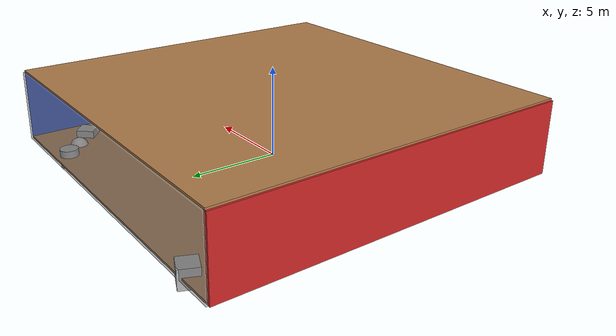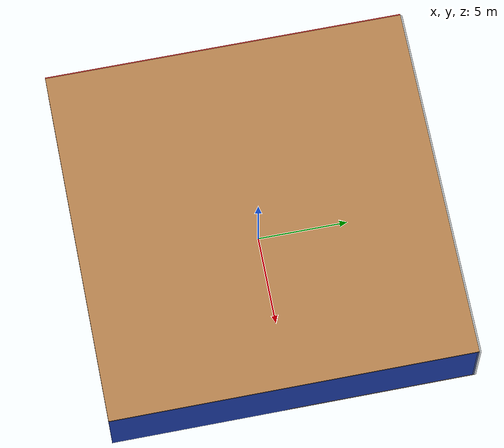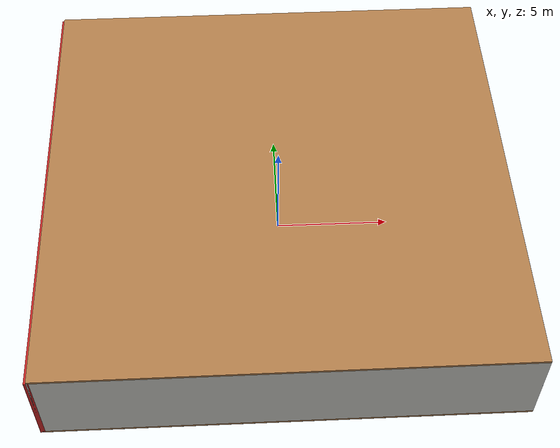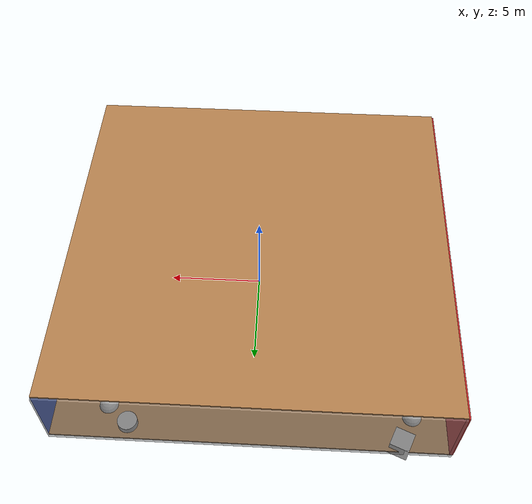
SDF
<sdf version="1.4">
 <world name="default">
  <physics type="ode">
   <max_step_size>0.001</max_step_size>
   <real_time_factor>1</real_time_factor>
   <real_time_update_rate>1000</real_time_update_rate>
   <gravity>0 0 -9.8</gravity>
  </physics>
  <scene><ambient>0.4 0.4 0.4 1</ambient><background>0.7 0.7 0.7 1</background><shadows>1</shadows></scene>
  <model name="Surrounding">
   <static>1</static>
   <link name="Ceiling">
    <collision name="Ceiling_Collision"><geometry><box><size>20 20 0.1</size></box></geometry></collision>
    <visual name="Ceiling_Visual">
     <geometry><box><size>20 20 0.1</size></box></geometry>
     <material>
      <script><uri>file://media/materials/scripts/gazebo.material</uri><name>Gazebo/WoodFloor</name></script>
     </material>
    </visual>
    <pose>0 0 4.05 0 0 0</pose>
   </link>
   <link name="Wall_South">
    <collision name="Wall_South_Collision">
     <geometry><box><size>20 0 4</size></box></geometry>
     <pose>0 0 2 0 -0 0</pose>
    </collision>
    <visual name="Wall_South_Visual">
     <pose>0 0 2 0 -0 0</pose>
     <geometry><box><size>20 0 4</size></box></geometry>
     <material>
      <script><uri>file://media/materials/scripts/gazebo.material</uri><name>Gazebo/CeilingTiled</name></script>
     </material>
    </visual>
    <velocity_decay><linear>0</linear><angular>0</angular></velocity_decay>
    <pose>0 -10 0 0 -0 0</pose>
   </link>
   <link name="Wall_East">
    <collision name="Wall_21_Collision">
     <geometry><box><size>20 0 4</size></box></geometry>
     <pose>0 0 2 0 -0 0</pose>
    </collision>
    <visual name="Wall_21_Visual">
     <pose>0 0 2 0 -0 0</pose>
     <geometry><box><size>20 0 4</size></box></geometry>
     <material>
      <script><uri>file://media/materials/scripts/gazebo.material</uri><name>Gazebo/Blue</name></script>
     </material>
    </visual>
    <velocity_decay><linear>0</linear><angular>0</angular></velocity_decay>
    <pose>10 0 0 0 -0 1.5708</pose>
   </link>
   <link name="Wall_North">
    <collision name="Wall_22_Collision">
     <geometry><box><size>20 0.2 4</size></box></geometry>
     <pose>0 0 2 0 -0 0</pose>
    </collision>
    <visual name="Wall_22_Visual">
     <pose>0 0 2 0 -0 0</pose>
     <geometry><box><size>20 0.2 4</size></box></geometry>
     <material>
      <script><uri>file://media/materials/scripts/gazebo.material</uri><name>Gazebo/GreyTransparent</name></script>
     </material>
    </visual>
    <velocity_decay><linear>0</linear><angular>0</angular></velocity_decay>
    <pose>0 10 0 0 -0 0</pose>
   </link>
   <link name="Wall_West">
    <collision name="Wall_23_Collision">
     <geometry><box><size>20 0.2 4</size></box></geometry>
     <pose>0 0 2 0 -0 0</pose>
    </collision>
    <visual name="Wall_23_Visual">
     <pose>0 0 2 0 -0 0</pose>
     <geometry><box><size>20 0.2 4</size></box></geometry>
     <material>
      <script><uri>file://media/materials/scripts/gazebo.material</uri><name>Gazebo/Red</name></script>
     </material>
    </visual>
    <velocity_decay><linear>0</linear><angular>0</angular></velocity_decay>
    <pose>-10 0 0 0 0 -1.5708</pose>
   </link>
   <link name="Ground_link">
    <collision name="collision">
     <pose>0 0 .05 0 -0 0</pose>
     <geometry><box><size>20 20 0.1</size></box></geometry>
    </collision>
    <visual name="visual">
     <pose>0 0 .05 0 -0 0</pose>
     <geometry><box><size>20 20 0.1</size></box></geometry>
     <material>
      <script><uri>file://media/materials/scripts/gazebo.material</uri><name>Gazebo/WoodFloor</name></script>
     </material>
    </visual>
   </link>
   <static>1</static>
  </model>
  <spherical_coordinates>
   <surface_model>EARTH_WGS84</surface_model>
   <latitude_deg>0</latitude_deg>
   <longitude_deg>0</longitude_deg>
   <elevation>0</elevation>
   <heading_deg>0</heading_deg>
  </spherical_coordinates>
  <light name="lightball_0" type="diffuse">
   <diffuse>0.8 0.8 0.8 1</diffuse>
   <specular>0.2 0.2 0.2 1</specular>
   <attenuation>
    <range>100</range>
    <constant>0.7</constant>
    <linear>0.01</linear>
    <quadratic>0.001</quadratic>
   </attenuation>
   <direction>-0.5 0.1 -0.9</direction>
   <pose>1.88889701328 -0.310898620499 1.74808561512 0 0 0</pose>
  </light>
  <light name="lightball_1" type="diffuse">
   <diffuse>0.8 0.8 0.8 1</diffuse>
   <specular>0.2 0.2 0.2 1</specular>
   <attenuation>
    <range>100</range>
    <constant>0.7</constant>
    <linear>0.01</linear>
    <quadratic>0.001</quadratic>
   </attenuation>
   <direction>-0.5 0.1 -0.9</direction>
   <pose>4.5514980156 -9.23625443137 1.66506675717 0 0 0</pose>
  </light>
  <light name="lightball_2" type="diffuse">
   <diffuse>0.8 0.8 0.8 1</diffuse>
   <specular>0.2 0.2 0.2 1</specular>
   <attenuation>
    <range>100</range>
    <constant>0.7</constant>
    <linear>0.01</linear>
    <quadratic>0.001</quadratic>
   </attenuation>
   <direction>-0.5 0.1 -0.9</direction>
   <pose>7.2861503157 -6.08150611232 1.25627082466 0 0 0</pose>
  </light>
  <include>
   <uri>model://textured_shapes</uri>
   <pose>-8.18154492018 8.14760784559 0 0 0 2.73755846294</pose>
  </include>
  <include>
   <uri>model://textured_shapes</uri>
   <pose>-3.98227007385 -1.19831381621 0 0 0 1.55318685701</pose>
  </include>
  <include><uri>model://cabinet</uri><pose>0.75100690447 -7.70859563656 0 0 0 0.30151453617</pose></include>
  <include><uri>model://table</uri><pose>1.46572448322 5.28684650315 0 0 0 2.61125426849</pose></include>
  <include><uri>model://table</uri><pose>4.1734077568 -5.03270425464 0 0 0 2.30082381852</pose></include>
  <include>
   <uri>model://textured_shapes</uri>
   <pose>7.2532632551 8.25894275915 0 0 0 0.85414934096</pose>
  </include>
 </world>
</sdf>

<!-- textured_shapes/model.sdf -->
<sdf version="1.6">
  <model name="textured_shapes">
    <pose>0 0 0.5 0 0 0</pose>
    <link name="box">
      <pose>0 -1.5 0 0 0 0</pose>
      <collision name="collision">
        <geometry>
          <box>
            <size>1 1 1</size>
          </box>
        </geometry>
      </collision>
      <visual name="visual">
        <geometry>
          <box>
            <size>1 1 1</size>
          </box>
        </geometry>
        <material>
          <script>
            <uri>model://../model_source/models/textured_shapes/materials/scripts</uri>
            <uri>model://../model_source/models/textured_shapes/materials/textures</uri>
            <name>TexturedShape/Squares</name>
          </script>
        </material>
      </visual>
    </link>
    <link name="sphere">
      <collision name="collision">
        <geometry>
          <sphere>
            <radius>0.5</radius>
          </sphere>
        </geometry>
      </collision>
      <visual name="visual">
        <geometry>
          <sphere>
            <radius>0.5</radius>
          </sphere>
        </geometry>
        <material>
          <script>
            <uri>model://../model_source/models/textured_shapes/materials/scripts</uri>
            <uri>model://../model_source/models/textured_shapes/materials/textures</uri>
            <name>TexturedShape/Squares</name>
          </script>
        </material>
      </visual>
    </link>
    <link name="cylinder">
      <pose>0 1.5 0 0 0 0</pose>
      <collision name="collision">
        <geometry>
          <cylinder>
            <radius>0.5</radius>
            <length>1</length>
          </cylinder>
        </geometry>
      </collision>
      <visual name="visual">
        <geometry>
          <cylinder>
            <radius>0.5</radius>
            <length>1</length>
          </cylinder>
        </geometry>
        <material>
          <script>
            <uri>model://../model_source/models/textured_shapes/materials/scripts</uri>
            <uri>model://../model_source/models/textured_shapes/materials/textures</uri>
            <name>TexturedShape/Squares</name>
          </script>
        </material>
      </visual>
    </link>
  </model>
</sdf>

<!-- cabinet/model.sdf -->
<sdf version="1.5">
  <model name="cabinet">
    <static>true</static>
    <link name="cabinet_bottom_plate">
      <inertial>
        <pose>0 0 -1 0 0 0</pose>
        <inertia>
          <ixx>2.050000</ixx>
          <ixy>0</ixy>
          <ixz>0</ixz>
          <iyy>2.050000</iyy>
          <iyz>0</iyz>
          <izz>2.050000</izz>
        </inertia>
        <mass>25.000000</mass>
      </inertial>
      <collision name="cabinet_bottom_plate_geom">
        <pose>0 0 0.010000 0 0 0</pose>
        <geometry>
          <box>
            <size>0.450000 0.450000 0.020000</size>
          </box>
        </geometry>
      </collision>
      <visual name="cabinet_bottom_plate_geom_visual">
        <pose>0 0 0.010000 0 0 0</pose>
        <geometry>
          <box>
            <size>0.450000 0.450000 0.020000</size>
          </box>
        </geometry>
        <material>
          <script>
            <uri>model://media/materials/scripts/gazebo.material</uri>
            <name>Gazebo/Wood</name>
          </script>
        </material>
      </visual>
      <collision name="cabinet_bottom_plate_geom_cabinet_back_plate">
        <pose>0.235000 0 0.510000 0 0 0</pose>
        <geometry>
          <box>
            <size>0.020000 0.450000 1.020000</size>
          </box>
        </geometry>
      </collision>
      <visual name="cabinet_bottom_plate_geom_cabinet_back_plate_visual">
        <pose>0.235000 0 0.510000 0 0 0</pose>
        <geometry>
          <box>
            <size>0.020000 0.450000 1.020000</size>
          </box>
        </geometry>
        <material>
          <script>
            <uri>model://media/materials/scripts/gazebo.material</uri>
            <name>Gazebo/Wood</name>
          </script>
        </material>
      </visual>
      <collision name="cabinet_bottom_plate_geom_cabinet_left_plate">
        <pose>0 0.235000 0.510000 0 0 0</pose>
        <geometry>
          <box>
            <size>0.450000 0.020000 1.020000</size>
          </box>
        </geometry>
      </collision>
      <visual name="cabinet_bottom_plate_geom_cabinet_left_plate_visual">
        <pose>0 0.235000 0.510000 0 0 0</pose>
        <geometry>
          <box>
            <size>0.450000 0.020000 1.020000</size>
          </box>
        </geometry>
        <material>
          <script>
            <uri>model://media/materials/scripts/gazebo.material</uri>
            <name>Gazebo/Wood</name>
          </script>
        </material>
      </visual>
      <collision name="cabinet_bottom_plate_geom_cabinet_middle_plate">
        <pose>0 0 0.510000 0 0 0</pose>
        <geometry>
          <box>
            <size>0.450000 0.450000 0.020000</size>
          </box>
        </geometry>
      </collision>
      <visual name="cabinet_bottom_plate_geom_cabinet_middle_plate_visual">
        <pose>0 0 0.510000 0 0 0</pose>
        <geometry>
          <box>
            <size>0.450000 0.450000 0.020000</size>
          </box>
        </geometry>
        <material>
          <script>
            <uri>model://media/materials/scripts/gazebo.material</uri>
            <name>Gazebo/Wood</name>
          </script>
        </material>
      </visual>
      <collision name="cabinet_bottom_plate_geom_cabinet_right_plate">
        <pose>0 -0.235000 0.510000 0 0 0</pose>
        <geometry>
          <box>
            <size>0.450000 0.020000 1.020000</size>
          </box>
        </geometry>
      </collision>
      <visual name="cabinet_bottom_plate_geom_cabinet_right_plate_visual">
        <pose>0 -0.235000 0.510000 0 0 0</pose>
        <geometry>
          <box>
            <size>0.450000 0.020000 1.020000</size>
          </box>
        </geometry>
        <material>
          <script>
            <uri>model://media/materials/scripts/gazebo.material</uri>
            <name>Gazebo/Wood</name>
          </script>
        </material>
      </visual>
      <collision name="cabinet_bottom_plate_geom_cabinet_top_plate">
        <pose>0 0 1.010000 0 0 0</pose>
        <geometry>
          <box>
            <size>0.450000 0.450000 0.020000</size>
          </box>
        </geometry>
      </collision>
      <visual name="cabinet_bottom_plate_geom_cabinet_top_plate_visual">
        <pose>0 0 1.010000 0 0 0</pose>
        <geometry>
          <box>
            <size>0.450000 0.450000 0.020000</size>
          </box>
        </geometry>
        <material>
          <script>
            <uri>model://media/materials/scripts/gazebo.material</uri>
            <name>Gazebo/Wood</name>
          </script>
        </material>
      </visual>
    </link>
  </model>
</sdf>

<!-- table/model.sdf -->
<sdf version="1.5">
  <model name="table">
    <static>true</static>
    <link name="link">
      <collision name="surface">
        <pose>0 0 1.0 0 0 0</pose>
        <geometry>
          <box>
            <size>1.5 0.8 0.03</size>
          </box>
        </geometry>
        <surface>
          <friction>
            <ode>
              <mu>0.6</mu>
              <mu2>0.6</mu2>
            </ode>
          </friction>
        </surface>
      </collision>
      <visual name="visual1">
        <pose>0 0 1.0 0 0 0</pose>
        <geometry>
          <box>
            <size>1.5 0.8 0.03</size>
          </box>
        </geometry>
        <material>
          <script>
            <uri>model://media/materials/scripts/gazebo.material</uri>
            <name>Gazebo/Wood</name>
          </script>
        </material>
      </visual>
      <collision name="front_left_leg">
        <pose>0.68 0.38 0.5 0 0 0</pose>
        <geometry>
          <cylinder>
            <radius>0.02</radius>
            <length>1.0</length>
          </cylinder>
        </geometry>
      </collision>
      <visual name="front_left_leg">
        <pose>0.68 0.38 0.5 0 0 0</pose>
        <geometry>
          <cylinder>
            <radius>0.02</radius>
            <length>1.0</length>
          </cylinder>
        </geometry>
        <material>
          <script>
            <uri>model://media/materials/scripts/gazebo.material</uri>
            <name>Gazebo/Grey</name>
          </script>
        </material>
      </visual>
      <collision name="front_right_leg">
        <pose>0.68 -0.38 0.5 0 0 0</pose>
        <geometry>
          <cylinder>
            <radius>0.02</radius>
            <length>1.0</length>
          </cylinder>
        </geometry>
      </collision>
      <visual name="front_right_leg">
        <pose>0.68 -0.38 0.5 0 0 0</pose>
        <geometry>
          <cylinder>
            <radius>0.02</radius>
            <length>1.0</length>
          </cylinder>
        </geometry>
        <material>
          <script>
            <uri>model://media/materials/scripts/gazebo.material</uri>
            <name>Gazebo/Grey</name>
          </script>
        </material>
      </visual>
      <collision name="back_right_leg">
        <pose>-0.68 -0.38 0.5 0 0 0</pose>
        <geometry>
          <cylinder>
            <radius>0.02</radius>
            <length>1.0</length>
          </cylinder>
        </geometry>
      </collision>
      <visual name="back_right_leg">
        <pose>-0.68 -0.38 0.5 0 0 0</pose>
        <geometry>
          <cylinder>
            <radius>0.02</radius>
            <length>1.0</length>
          </cylinder>
        </geometry>
        <material>
          <script>
            <uri>model://media/materials/scripts/gazebo.material</uri>
            <name>Gazebo/Grey</name>
          </script>
        </material>
      </visual>
      <collision name="back_left_leg">
        <pose>-0.68 0.38 0.5 0 0 0</pose>
        <geometry>
          <cylinder>
            <radius>0.02</radius>
            <length>1.0</length>
          </cylinder>
        </geometry>
      </collision>
      <visual name="back_left_leg">
        <pose>-0.68 0.38 0.5 0 0 0</pose>
        <geometry>
          <cylinder>
            <radius>0.02</radius>
            <length>1.0</length>
          </cylinder>
        </geometry>
        <material>
          <script>
            <uri>model://media/materials/scripts/gazebo.material</uri>
            <name>Gazebo/Grey</name>
          </script>
        </material>
      </visual>
    </link>
  </model>
</sdf>
